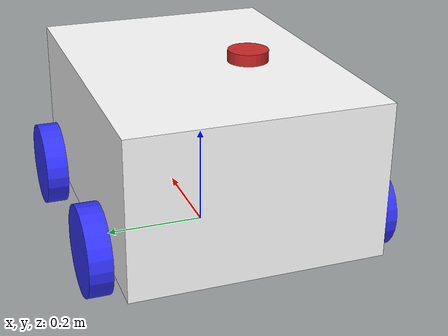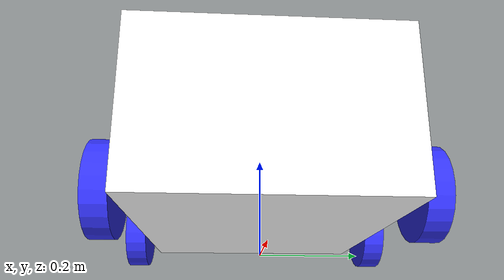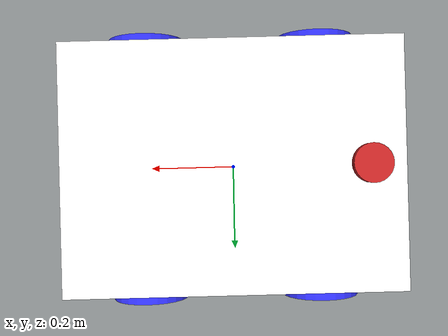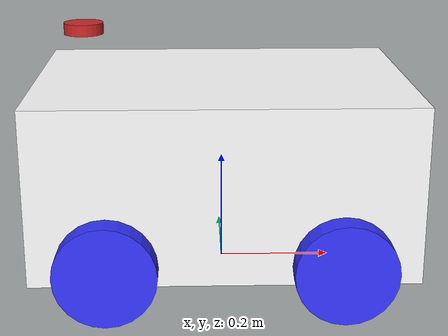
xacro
<?xml version="1.0"?>
<robot xmlns:xacro="http://www.ros.org/wiki/xacro"  name="diffdrive_robot">

    <xacro:arg name="prefix" default="" />
    <xacro:arg name="use_mock_hardware" default="false" />

    <xacro:include filename="rashwan_bot_desc.urdf.xacro" />
    <xacro:include filename="rashwan_gazebo.xacro" />
    <xacro:include filename="rashwan_lidar.xacro" />
    <xacro:include filename="rashwan_camera.xacro" />

    <xacro:include filename="$(find my_odrive_botwheel_explorer)/urdf/diffbot.ros2_control.xacro" />

    <xacro:diffbot prefix="$(arg prefix)" />
    <xacro:diffbot_ros2_control
        name="DiffBot" prefix="$(arg prefix)" use_mock_hardware="$(arg use_mock_hardware)"/>
</robot>

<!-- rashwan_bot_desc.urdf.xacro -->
<robot xmlns:xacro="http://www.ros.org/wiki/xacro" >

    <xacro:include filename="rashwan_inertial.xacro"/>

    <xacro:macro name="diffbot" params="prefix">

    <xacro:property name="PI" value="3.1415926535897931"/>
    <xacro:property name="base_mass" value="0.3" /> <!-- arbitrary value for base mass -->
    <xacro:property name="base_width" value="0.488" />
    <xacro:property name="base_length" value="0.658" />
    <xacro:property name="base_height" value="0.302" />
    <xacro:property name="wheel2wheel_L" value="0.391" />
    <xacro:property name="wheel2wheel_W" value="${base_width + wheel_len + 0.02}" />
    <xacro:property name="chassis2wheel" value="0.0477" />
    <xacro:property name="wheel_mass" value="0.3" /> <!-- arbitrary value for wheel mass -->
    <xacro:property name="wheel_len" value="0.044" />
    <xacro:property name="wheel_radius" value="0.0855" />

    <material name="white">
        <color rgba="1 1 1 1" />
    </material>

    <material name="orange">
        <color rgba="1 0.3 0.1 1"/>
    </material>

    <material name="blue">
        <color rgba="0.2 0.2 1 1"/>
    </material>

    <material name="black">
        <color rgba="0 0 0 1"/>
    </material>

    <!-- BASE LINK -->
    <link name="base_link">
    </link>

    <!-- BASE_FOOTPRINT LINK -->

    <joint name="base_footprint_joint" type="fixed">
        <parent link="base_link"/>
        <child link="base_footprint"/>
        <origin xyz="0 0 0" rpy="0 0 0"/>
    </joint>

    <link name="base_footprint">
    </link>

    <!-- CHASSIS LINK -->
    <joint name="chassis_joint" type="fixed">
        <parent link="base_link"/>
        <child link="chassis"/>
        <origin xyz="-${base_length/2} 0 0"/>
    </joint>

    <link name="chassis">
        <visual>
            <origin xyz="${base_length/2} 0 ${base_height/2 + chassis2wheel}"/>
            <geometry>
                <box size="${base_length} ${base_width} ${base_height}"/>
            </geometry>
            <material name="white"/>
        </visual>
        <collision>
            <origin xyz="${base_length/2} 0 ${base_height/2 + chassis2wheel}"/>
            <geometry>
                <box size="${base_length} ${base_width} ${base_height}"/>
            </geometry>
        </collision>
        <xacro:inertial_box mass="2.0" x="${base_length}" y="${base_width}" z="${base_height}">
            <origin xyz="${base_length/2} 0 ${base_height/2 + chassis2wheel}" rpy="0 0 0"/>
        </xacro:inertial_box>
    </link>

    <!-- FRONT LEFT WHEEL LINK -->
    <joint name="front_left_wheel_joint" type="continuous">
        <parent link="base_link"/>
        <child link="front_left_wheel"/>
        <origin xyz="${wheel2wheel_L/2} ${wheel2wheel_W/2} ${wheel_radius}" rpy="-${pi/2} 0 0" />
        <axis xyz="0 0 1"/>
    </joint>

    <link name="front_left_wheel">
        <visual>
            <geometry>
                <cylinder radius="${wheel_radius}" length="${wheel_len}"/>
            </geometry>
            <material name="blue"/>
        </visual>
        <collision>
            <geometry>
                <cylinder radius="${wheel_radius}" length="${wheel_len}"/>
            </geometry>
        </collision>
        <xacro:inertial_cylinder mass="0.1" radius="${wheel_radius}" length="${wheel_len}">
            <origin xyz="0 0 0" rpy="0 0 0"/>
        </xacro:inertial_cylinder>
    </link>

    <!-- FRONT RIGHT WHEEL LINK -->
    <joint name="front_right_wheel_joint" type="continuous">
        <parent link="base_link"/>
        <child link="front_right_wheel"/>
        <origin xyz="${wheel2wheel_L/2} -${wheel2wheel_W/2} ${wheel_radius}" rpy="${pi/2} 0 0" />
        <axis xyz="0 0 -1"/>
    </joint>

    <link name="front_right_wheel">
        <visual>
            <geometry>
                <cylinder radius="${wheel_radius}" length="${wheel_len}"/>
            </geometry>
            <material name="blue"/>
        </visual>
        <collision>
            <geometry>
                <cylinder radius="${wheel_radius}" length="${wheel_len}"/>
            </geometry>
        </collision>
        <xacro:inertial_cylinder mass="0.1" radius="${wheel_radius}" length="${wheel_len}">
            <origin xyz="0 0 0" rpy="0 0 0"/>
        </xacro:inertial_cylinder>
    </link>

    <!-- REAR LEFT WHEEL LINK -->
    <joint name="rear_left_wheel_joint" type="continuous">
        <parent link="base_link"/>
        <child link="rear_left_wheel"/>
        <origin xyz="-${wheel2wheel_L/2} ${wheel2wheel_W/2} ${wheel_radius}" rpy="-${pi/2} 0 0" />
        <axis xyz="0 0 1"/>
    </joint>

    <link name="rear_left_wheel">
        <visual>
            <geometry>
                <cylinder radius="${wheel_radius}" length="${wheel_len}"/>
            </geometry>
            <material name="blue"/>
        </visual>
        <collision>
            <geometry>
                <cylinder radius="${wheel_radius}" length="${wheel_len}"/>
            </geometry>
        </collision>
        <xacro:inertial_cylinder mass="0.1" radius="${wheel_radius}" length="${wheel_len}">
            <origin xyz="0 0 0" rpy="0 0 0"/>
        </xacro:inertial_cylinder>
    </link>

    <!-- REAR RIGHT WHEEL LINK -->
    <joint name="rear_right_wheel_joint" type="continuous">
        <parent link="base_link"/>
        <child link="rear_right_wheel"/>
        <origin xyz="-${wheel2wheel_L/2} -${wheel2wheel_W/2} ${wheel_radius}" rpy="${pi/2} 0 0" />
        <axis xyz="0 0 -1"/>
    </joint>

    <link name="rear_right_wheel">
        <visual>
            <geometry>
                <cylinder radius="${wheel_radius}" length="${wheel_len}"/>
            </geometry>
            <material name="blue"/>
        </visual>
        <collision>
            <geometry>
                <cylinder radius="${wheel_radius}" length="${wheel_len}"/>
            </geometry>
        </collision>
        <xacro:inertial_cylinder mass="0.1" radius="${wheel_radius}" length="${wheel_len}">
            <origin xyz="0 0 0" rpy="0 0 0"/>
        </xacro:inertial_cylinder>
    </link>
    </xacro:macro>

</robot>

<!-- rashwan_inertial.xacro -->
<robot xmlns:xacro="http://www.ros.org/wiki/xacro" >

    <!-- Specify some standard inertial calculations https://en.wikipedia.org/wiki/List_of_moments_of_inertia -->
    <!-- These make use of xacro's mathematical functionality -->

    <xacro:macro name="inertial_sphere" params="mass radius *origin">
        <inertial>
            <xacro:insert_block name="origin"/>
            <mass value="${mass}" />
            <inertia ixx="${(2/5) * mass * (radius*radius)}" ixy="0.0" ixz="0.0"
                    iyy="${(2/5) * mass * (radius*radius)}" iyz="0.0"
                    izz="${(2/5) * mass * (radius*radius)}" />
        </inertial>
    </xacro:macro>

    <xacro:macro name="inertial_box" params="mass x y z *origin">
        <inertial>
            <xacro:insert_block name="origin"/>
            <mass value="${mass}" />
            <inertia ixx="${(1/12) * mass * (y*y+z*z)}" ixy="0.0" ixz="0.0"
                    iyy="${(1/12) * mass * (x*x+z*z)}" iyz="0.0"
                    izz="${(1/12) * mass * (x*x+y*y)}" />
        </inertial>
    </xacro:macro>

    <xacro:macro name="inertial_cylinder" params="mass length radius *origin">
        <inertial>
            <xacro:insert_block name="origin"/>
            <mass value="${mass}" />
            <inertia ixx="${(1/12) * mass * (3*radius*radius + length*length)}" ixy="0.0" ixz="0.0"
                    iyy="${(1/12) * mass * (3*radius*radius + length*length)}" iyz="0.0"
                    izz="${(1/2) * mass * (radius*radius)}" />
        </inertial>
    </xacro:macro>

</robot>

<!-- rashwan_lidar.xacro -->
<robot xmlns:xacro="http://www.ros.org/wiki/xacro" >

    <joint name="laser_joint" type="fixed">
        <parent link="chassis"/>
        <child link="laser_frame"/>
        <origin xyz="0.085 0 0.4366" rpy="0 0 ${pi}"/>
    </joint>

    <link name="laser_frame">
        <visual>
            <geometry>
                <cylinder radius="0.035" length="0.02"/>
            </geometry>
            <material name="red"/>
        </visual>
        <collision>
            <geometry>
                <cylinder radius="0.035" length="0.02"/>
            </geometry>
        </collision>
        <xacro:inertial_cylinder mass="0.1" length="0.02" radius="0.035">
            <origin xyz="0 0 0" rpy="0 0 0"/>
        </xacro:inertial_cylinder>
    </link>

    <gazebo reference="laser_frame">
        <material>Gazebo/Red</material>

        <sensor name="laser" type="ray">
            <pose> 0 0 0 0 0 0 </pose>
            <visualize>false</visualize>
            <update_rate>10</update_rate>
            <ray>
                <scan>
                    <horizontal>
                        <samples>360</samples>
                        <min_angle>-3.14</min_angle>
                        <max_angle>3.14</max_angle>
                    </horizontal>
                </scan>
                <range>
                    <min>0.3</min>
                    <max>12</max>
                </range>
            </ray>
            <plugin name="laser_controller" filename="libgazebo_ros_ray_sensor.so">
                <ros>
                    <argument>~/out:=scan</argument>
                </ros>
                <output_type>sensor_msgs/LaserScan</output_type>
                <frame_name>laser_frame</frame_name>
            </plugin>
        </sensor>
    </gazebo>

</robot>

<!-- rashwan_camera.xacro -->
<robot xmlns:xacro="http://www.ros.org/wiki/xacro" >

    <joint name="camera_joint" type="fixed">
        <parent link="chassis"/>
        <child link="camera_link"/>
        <origin xyz="0.605 0 0.264" rpy="0 0 0"/>
    </joint>

    <link name="camera_link">
        <visual>
            <geometry>
                <box size="0.025 0.1 0.03"/>
            </geometry>
            <material name="red"/>
        </visual>
    </link>

    <joint name="camera_optical_joint" type="fixed">
        <parent link="camera_link"/>
        <child link="camera_link_optical"/>
        <origin xyz="0 0 0" rpy="${-pi/2} 0 ${-pi/2}"/>
    </joint>

    <link name="camera_link_optical"></link>

    <gazebo reference="camera_link">
        <material>Gazebo/Red</material>

        <sensor name="camera" type="camera">
            <pose> 0 0 0 0 0 0 </pose>
            <visualize>true</visualize>
            <update_rate>10</update_rate>
            <camera>
                <horizontal_fov>1.089</horizontal_fov>
                <image>
                    <format>R8G8B8</format>
                    <width>640</width>
                    <height>480</height>
                </image>
                <clip>
                    <near>0.05</near>
                    <far>8.0</far>
                </clip>
            </camera>
            <plugin name="camera_controller" filename="libgazebo_ros_camera.so">
                <frame_name>camera_link_optical</frame_name>
            </plugin>
        </sensor>
    </gazebo>

</robot>
